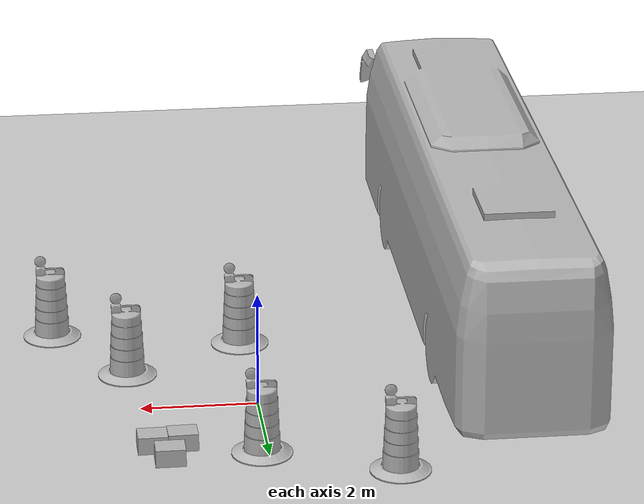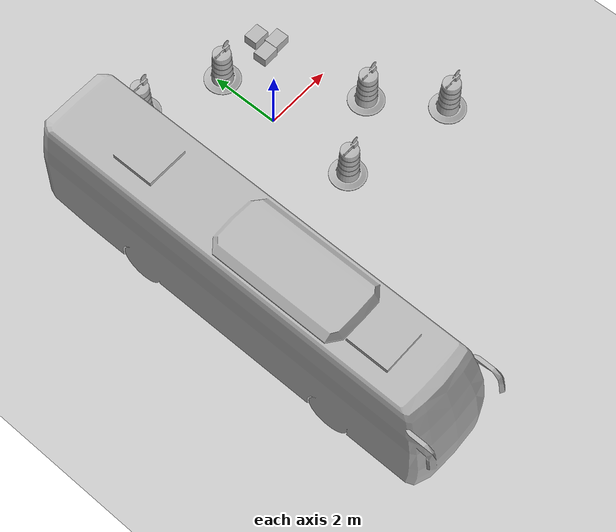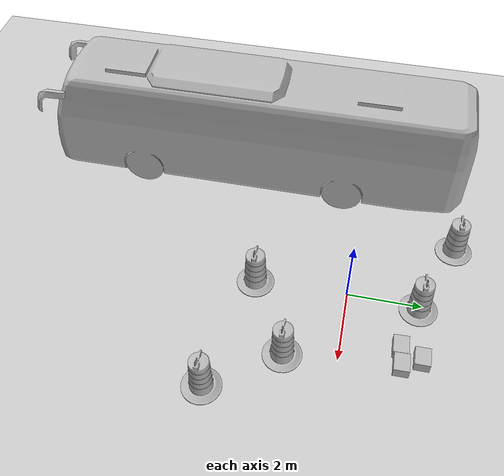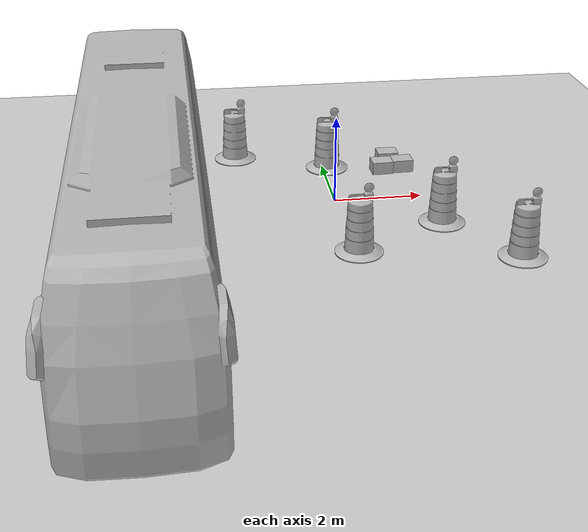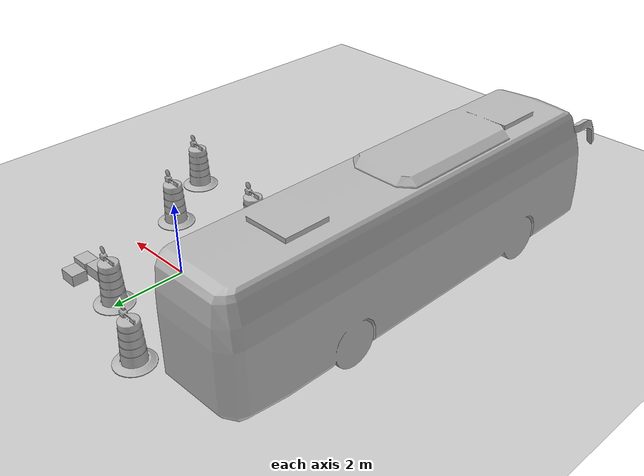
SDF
<sdf version="1.7">
 <world name="default">
  <light name="sun" type="directional">
   <pose>0 0 10 0 -0 0</pose>
   <diffuse>0.8 0.8 0.8 1</diffuse>
   <specular>0.2 0.2 0.2 1</specular>
   <attenuation>
    <range>1000</range>
    <constant>0.9</constant>
    <linear>0.01</linear>
    <quadratic>0.001</quadratic>
   </attenuation>
   <direction>-0.5 0.1 -0.9</direction>
   <spot><inner_angle>0</inner_angle><outer_angle>0</outer_angle><falloff>0</falloff></spot>
  </light>
  <model name="ground_plane">
   <static>1</static>
   <link name="link">
    <collision name="collision">
     <geometry><plane><normal>0 0 1</normal><size>100 100</size></plane></geometry>
     <surface>
      <contact><collide_bitmask>65535</collide_bitmask></contact>
      <friction><ode><mu>100</mu><mu2>50</mu2></ode></friction>
     </surface>
    </collision>
    <visual name="visual">
     <cast_shadows>0</cast_shadows>
     <geometry><plane><normal>0 0 1</normal><size>100 100</size></plane></geometry>
     <material>
      <script><uri>file://media/materials/scripts/gazebo.material</uri><name>Gazebo/Grey</name></script>
     </material>
    </visual>
   </link>
  </model>
  <gravity>0 0 -9.8</gravity>
  <magnetic_field>6e-06 2.3e-05 -4.2e-05</magnetic_field>
  <atmosphere type="adiabatic"/>
  <physics type="ode">
   <max_step_size>0.001</max_step_size>
   <real_time_factor>1</real_time_factor>
   <real_time_update_rate>1000</real_time_update_rate>
  </physics>
  <scene><ambient>0.4 0.4 0.4 1</ambient><background>0.7 0.7 0.7 1</background><shadows>1</shadows></scene>
  <audio><device>default</device></audio>
  <spherical_coordinates>
   <surface_model>EARTH_WGS84</surface_model>
   <latitude_deg>37.7749</latitude_deg>
   <longitude_deg>-122.4194</longitude_deg>
   <elevation>15.0</elevation>
   <heading_deg>0</heading_deg>
  </spherical_coordinates>
  <model name="Construction Barrel">
   <link name="link">
    <inertial>
     <pose>0 0 0.4 0 -0 0</pose>
     <mass>500</mass>
     <inertia><ixx>51.2096</ixx><iyy>51.2096</iyy><izz>25</izz><ixy>0</ixy><ixz>0</ixz><iyz>0</iyz></inertia>
    </inertial>
    <collision name="collision">
     <geometry><mesh><uri>model://construction_barrel/meshes/construction_barrel.dae</uri></mesh></geometry>
    </collision>
    <visual name="visual">
     <geometry><mesh><uri>model://construction_barrel/meshes/construction_barrel.dae</uri></mesh></geometry>
    </visual>
   </link>
   <pose>0.078149 -2.4936 -1e-06 -3e-06 -1e-06 -3.2e-05</pose>
  </model>
  <model name="Construction Barrel_clone">
   <link name="link">
    <inertial>
     <pose>0 0 0.4 0 -0 0</pose>
     <mass>500</mass>
     <inertia><ixx>51.2096</ixx><iyy>51.2096</iyy><izz>25</izz><ixy>0</ixy><ixz>0</ixz><iyz>0</iyz></inertia>
    </inertial>
    <collision name="collision">
     <geometry><mesh><uri>model://construction_barrel/meshes/construction_barrel.dae</uri></mesh></geometry>
    </collision>
    <visual name="visual">
     <geometry><mesh><uri>model://construction_barrel/meshes/construction_barrel.dae</uri></mesh></geometry>
    </visual>
   </link>
   <pose>3.36322 -3.16097 0 0 0 -1.8e-05</pose>
  </model>
  <model name="Construction Barrel_clone_0">
   <link name="link">
    <inertial>
     <pose>0 0 0.4 0 -0 0</pose>
     <mass>500</mass>
     <inertia><ixx>51.2096</ixx><iyy>51.2096</iyy><izz>25</izz><ixy>0</ixy><ixz>0</ixz><iyz>0</iyz></inertia>
    </inertial>
    <collision name="collision">
     <geometry><mesh><uri>model://construction_barrel/meshes/construction_barrel.dae</uri></mesh></geometry>
    </collision>
    <visual name="visual">
     <geometry><mesh><uri>model://construction_barrel/meshes/construction_barrel.dae</uri></mesh></geometry>
    </visual>
   </link>
   <pose>-2.06373 2.77064 -1e-06 4e-06 -2e-06 -1.9e-05</pose>
  </model>
  <model name="Construction Barrel_clone_1">
   <link name="link">
    <inertial>
     <pose>0 0 0.4 0 -0 0</pose>
     <mass>500</mass>
     <inertia><ixx>51.2096</ixx><iyy>51.2096</iyy><izz>25</izz><ixy>0</ixy><ixz>0</ixz><iyz>0</iyz></inertia>
    </inertial>
    <collision name="collision">
     <geometry><mesh><uri>model://construction_barrel/meshes/construction_barrel.dae</uri></mesh></geometry>
    </collision>
    <visual name="visual">
     <geometry><mesh><uri>model://construction_barrel/meshes/construction_barrel.dae</uri></mesh></geometry>
    </visual>
   </link>
   <pose>2.13286 -1.39081 -0 0 0 -0.000367</pose>
  </model>
  <model name="bus">
   <static>1</static>
   <link name="link">
    <collision name="collision">
     <geometry><mesh><scale>0.01 0.01 0.01</scale><uri>model://bus/meshes/bus.obj</uri></mesh></geometry>
    </collision>
    <visual name="visual">
     <geometry><mesh><scale>0.01 0.01 0.01</scale><uri>model://bus/meshes/bus.obj</uri></mesh></geometry>
    </visual>
   </link>
   <pose>-4.29664 -3.34261 0 0 -0 0</pose>
  </model>
  <model name="cardboard_box">
   <pose>1.39646 1.50545 0.149 0 -0 0.027429</pose>
   <link name="link">
    <inertial>
     <mass>2</mass>
     <inertia>
      <ixx>0.0416667</ixx>
      <ixy>0</ixy>
      <ixz>0</ixz>
      <iyy>0.0566667</iyy>
      <iyz>0</iyz>
      <izz>0.0683333</izz>
     </inertia>
    </inertial>
    <collision name="collision">
     <geometry><box><size>0.5 0.4 0.3</size></box></geometry>
     <surface>
      <friction><ode><mu>1</mu><mu2>1</mu2></ode></friction>
      <contact><ode><kp>1e+07</kp><kd>1</kd><min_depth>0.001</min_depth><max_vel>0.1</max_vel></ode></contact>
     </surface>
    </collision>
    <visual name="visual">
     <pose>0 0 -0.15 0 -0 0</pose>
     <geometry>
      <mesh><uri>model://cardboard_box/meshes/cardboard_box.dae</uri><scale>1.25932 1.00745 0.755591</scale></mesh>
     </geometry>
    </visual>
   </link>
  </model>
  <model name="Construction Barrel_clone_2">
   <link name="link">
    <inertial>
     <pose>0 0 0.4 0 -0 0</pose>
     <mass>500</mass>
     <inertia><ixx>51.2096</ixx><iyy>51.2096</iyy><izz>25</izz><ixy>0</ixy><ixz>0</ixz><iyz>0</iyz></inertia>
    </inertial>
    <collision name="collision">
     <geometry><mesh><uri>model://construction_barrel/meshes/construction_barrel.dae</uri></mesh></geometry>
    </collision>
    <visual name="visual">
     <geometry><mesh><uri>model://construction_barrel/meshes/construction_barrel.dae</uri></mesh></geometry>
    </visual>
   </link>
   <pose>0.113411 1.89387 -3e-06 0 -1.2e-05 -1.4e-05</pose>
  </model>
  <model name="cardboard_box_clone">
   <pose>1.89865 1.55452 0.149 0 -0 0.016188</pose>
   <link name="link">
    <inertial>
     <mass>2</mass>
     <inertia>
      <ixx>0.0416667</ixx>
      <ixy>0</ixy>
      <ixz>0</ixz>
      <iyy>0.0566667</iyy>
      <iyz>0</iyz>
      <izz>0.0683333</izz>
     </inertia>
    </inertial>
    <collision name="collision">
     <geometry><box><size>0.5 0.4 0.3</size></box></geometry>
     <surface>
      <friction><ode><mu>1</mu><mu2>1</mu2></ode></friction>
      <contact><ode><kp>1e+07</kp><kd>1</kd><min_depth>0.001</min_depth><max_vel>0.1</max_vel></ode></contact>
     </surface>
    </collision>
    <visual name="visual">
     <pose>0 0 -0.15 0 -0 0</pose>
     <geometry>
      <mesh><uri>model://cardboard_box/meshes/cardboard_box.dae</uri><scale>1.25932 1.00745 0.755591</scale></mesh>
     </geometry>
    </visual>
   </link>
  </model>
  <model name="cardboard_box_clone_0">
   <pose>1.64095 2.05349 0.149 0 -0 0</pose>
   <link name="link">
    <inertial>
     <mass>2</mass>
     <inertia>
      <ixx>0.0416667</ixx>
      <ixy>0</ixy>
      <ixz>0</ixz>
      <iyy>0.0566667</iyy>
      <iyz>0</iyz>
      <izz>0.0683333</izz>
     </inertia>
    </inertial>
    <collision name="collision">
     <geometry><box><size>0.5 0.4 0.3</size></box></geometry>
     <surface>
      <friction><ode><mu>1</mu><mu2>1</mu2></ode></friction>
      <contact><ode><kp>1e+07</kp><kd>1</kd><min_depth>0.001</min_depth><max_vel>0.1</max_vel></ode></contact>
     </surface>
    </collision>
    <visual name="visual">
     <pose>0 0 -0.15 0 -0 0</pose>
     <geometry>
      <mesh><uri>model://cardboard_box/meshes/cardboard_box.dae</uri><scale>1.25932 1.00745 0.755591</scale></mesh>
     </geometry>
    </visual>
   </link>
  </model>
 </world>
</sdf>
